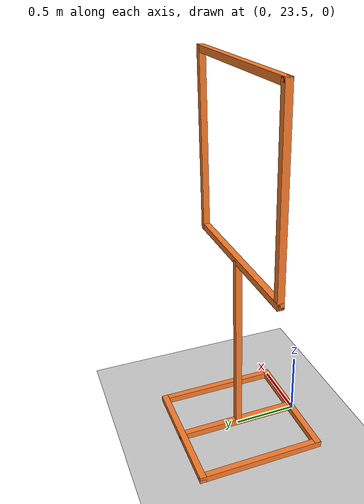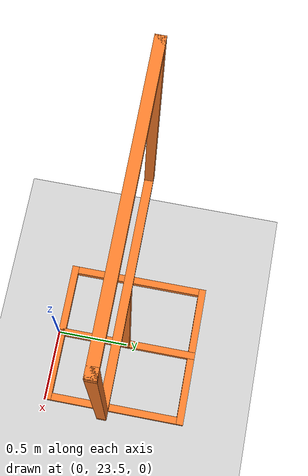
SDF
<sdf version="1.6">
 <world name="default">
  <model name="ground_plane">
   <static>1</static>
   <link name="link">
    <collision name="collision">
     <geometry><plane><normal>0 0 1</normal><size>100 100</size></plane></geometry>
     <surface><friction><ode><mu>100</mu><mu2>50</mu2></ode></friction></surface>
    </collision>
    <visual name="visual">
     <cast_shadows>0</cast_shadows>
     <geometry><plane><normal>0 0 1</normal><size>100 100</size></plane></geometry>
     <material>
      <script><uri>file://media/materials/scripts/gazebo.material</uri><name>Gazebo/Grey</name></script>
     </material>
    </visual>
    <velocity_decay><linear>0</linear><angular>0</angular></velocity_decay>
   </link>
  </model>
  <model name="adr2017_Small_Gate_4">
   <link name="link">
    <pose>0 0 0.75 0 -0 0</pose>
    <inertial>
     <mass>1</mass>
     <inertia>
      <ixx>0.166667</ixx>
      <ixy>0</ixy>
      <ixz>0</ixz>
      <iyy>0.166667</iyy>
      <iyz>0</iyz>
      <izz>0.166667</izz>
     </inertia>
    </inertial>
    <visual name="visual">
     <geometry><box><size>0.05 0.05 1.5</size></box></geometry>
     <material>
      <script><name>Gazebo/Grey</name><uri>file://media/materials/scripts/gazebo.material</uri></script>
      <shader type="vertex"><normal_map>__default__</normal_map></shader>
      <ambient>0.976 0.484 0.164 1</ambient>
      <diffuse>0.976 0.484 0.164 1</diffuse>
      <specular>0.01 0.01 0.01 1</specular>
      <emissive>0 0 0 1</emissive>
     </material>
    </visual>
    <collision name="collision">
     <geometry><box><size>0.05 0.05 1.5</size></box></geometry>
     <surface>
      <friction>
       <ode><mu>1</mu><mu2>1</mu2><fdir1>0 0 0</fdir1><slip1>0</slip1><slip2>0</slip2></ode>
       <torsional>
        <coefficient>1</coefficient>
        <patch_radius>0</patch_radius>
        <surface_radius>0</surface_radius>
        <use_patch_radius>1</use_patch_radius>
        <ode><slip>0</slip></ode>
       </torsional>
      </friction>
      <bounce><restitution_coefficient>0</restitution_coefficient><threshold>1e+06</threshold></bounce>
      <contact>
       <collide_without_contact>0</collide_without_contact>
       <collide_without_contact_bitmask>1</collide_without_contact_bitmask>
       <collide_bitmask>1</collide_bitmask>
       <ode>
        <soft_cfm>0</soft_cfm>
        <soft_erp>0.2</soft_erp>
        <kp>1e+13</kp>
        <kd>1</kd>
        <max_vel>0.01</max_vel>
        <min_depth>0</min_depth>
       </ode>
       <bullet>
        <split_impulse>1</split_impulse>
        <split_impulse_penetration_threshold>-0.01</split_impulse_penetration_threshold>
        <soft_cfm>0</soft_cfm>
        <soft_erp>0.2</soft_erp>
        <kp>1e+13</kp>
        <kd>1</kd>
       </bullet>
      </contact>
     </surface>
    </collision>
   </link>
   <link name="link_2">
    <pose>0 0 0.025 0 -0 0</pose>
    <inertial>
     <mass>1</mass>
     <inertia>
      <ixx>0.166667</ixx>
      <ixy>0</ixy>
      <ixz>0</ixz>
      <iyy>0.166667</iyy>
      <iyz>0</iyz>
      <izz>0.166667</izz>
     </inertia>
    </inertial>
    <visual name="visual">
     <geometry><box><size>0.05 1 0.05</size></box></geometry>
     <material>
      <script><name>Gazebo/Grey</name><uri>file://media/materials/scripts/gazebo.material</uri></script>
      <shader type="vertex"><normal_map>__default__</normal_map></shader>
      <ambient>0.976 0.484 0.164 1</ambient>
      <diffuse>0.976 0.484 0.164 1</diffuse>
      <specular>0.01 0.01 0.01 1</specular>
      <emissive>0 0 0 1</emissive>
     </material>
    </visual>
    <collision name="collision">
     <geometry><box><size>0.05 1 0.05</size></box></geometry>
     <surface>
      <friction>
       <ode><mu>1</mu><mu2>1</mu2><fdir1>0 0 0</fdir1><slip1>0</slip1><slip2>0</slip2></ode>
       <torsional>
        <coefficient>1</coefficient>
        <patch_radius>0</patch_radius>
        <surface_radius>0</surface_radius>
        <use_patch_radius>1</use_patch_radius>
        <ode><slip>0</slip></ode>
       </torsional>
      </friction>
      <bounce><restitution_coefficient>0</restitution_coefficient><threshold>1e+06</threshold></bounce>
      <contact>
       <collide_without_contact>0</collide_without_contact>
       <collide_without_contact_bitmask>1</collide_without_contact_bitmask>
       <collide_bitmask>1</collide_bitmask>
       <ode>
        <soft_cfm>0</soft_cfm>
        <soft_erp>0.2</soft_erp>
        <kp>1e+13</kp>
        <kd>1</kd>
        <max_vel>0.01</max_vel>
        <min_depth>0</min_depth>
       </ode>
       <bullet>
        <split_impulse>1</split_impulse>
        <split_impulse_penetration_threshold>-0.01</split_impulse_penetration_threshold>
        <soft_cfm>0</soft_cfm>
        <soft_erp>0.2</soft_erp>
        <kp>1e+13</kp>
        <kd>1</kd>
       </bullet>
      </contact>
     </surface>
    </collision>
   </link>
   <link name="link_3">
    <pose>0.475 0 0.024 0 -0 0</pose>
    <inertial>
     <mass>1</mass>
     <inertia>
      <ixx>0.166667</ixx>
      <ixy>0</ixy>
      <ixz>0</ixz>
      <iyy>0.166667</iyy>
      <iyz>0</iyz>
      <izz>0.166667</izz>
     </inertia>
    </inertial>
    <visual name="visual">
     <geometry><box><size>0.05 1 0.05</size></box></geometry>
     <material>
      <script><name>Gazebo/Grey</name><uri>file://media/materials/scripts/gazebo.material</uri></script>
      <shader type="vertex"><normal_map>__default__</normal_map></shader>
      <ambient>0.976 0.484 0.164 1</ambient>
      <diffuse>0.976 0.484 0.164 1</diffuse>
      <specular>0.01 0.01 0.01 1</specular>
      <emissive>0 0 0 1</emissive>
     </material>
    </visual>
    <collision name="collision">
     <geometry><box><size>0.05 1 0.05</size></box></geometry>
     <surface>
      <friction>
       <ode><mu>1</mu><mu2>1</mu2><fdir1>0 0 0</fdir1><slip1>0</slip1><slip2>0</slip2></ode>
       <torsional>
        <coefficient>1</coefficient>
        <patch_radius>0</patch_radius>
        <surface_radius>0</surface_radius>
        <use_patch_radius>1</use_patch_radius>
        <ode><slip>0</slip></ode>
       </torsional>
      </friction>
      <bounce><restitution_coefficient>0</restitution_coefficient><threshold>1e+06</threshold></bounce>
      <contact>
       <collide_without_contact>0</collide_without_contact>
       <collide_without_contact_bitmask>1</collide_without_contact_bitmask>
       <collide_bitmask>1</collide_bitmask>
       <ode>
        <soft_cfm>0</soft_cfm>
        <soft_erp>0.2</soft_erp>
        <kp>1e+13</kp>
        <kd>1</kd>
        <max_vel>0.01</max_vel>
        <min_depth>0</min_depth>
       </ode>
       <bullet>
        <split_impulse>1</split_impulse>
        <split_impulse_penetration_threshold>-0.01</split_impulse_penetration_threshold>
        <soft_cfm>0</soft_cfm>
        <soft_erp>0.2</soft_erp>
        <kp>1e+13</kp>
        <kd>1</kd>
       </bullet>
      </contact>
     </surface>
    </collision>
   </link>
   <link name="link_4">
    <pose>-0.475 0 0.024 0 -0 0</pose>
    <inertial>
     <mass>1</mass>
     <inertia>
      <ixx>0.166667</ixx>
      <ixy>0</ixy>
      <ixz>0</ixz>
      <iyy>0.166667</iyy>
      <iyz>0</iyz>
      <izz>0.166667</izz>
     </inertia>
    </inertial>
    <visual name="visual">
     <geometry><box><size>0.05 1 0.05</size></box></geometry>
     <material>
      <script><name>Gazebo/Grey</name><uri>file://media/materials/scripts/gazebo.material</uri></script>
      <shader type="vertex"><normal_map>__default__</normal_map></shader>
      <ambient>0.976 0.484 0.164 1</ambient>
      <diffuse>0.976 0.484 0.164 1</diffuse>
      <specular>0.01 0.01 0.01 1</specular>
      <emissive>0 0 0 1</emissive>
     </material>
    </visual>
    <collision name="collision">
     <geometry><box><size>0.05 1 0.05</size></box></geometry>
     <surface>
      <friction>
       <ode><mu>1</mu><mu2>1</mu2><fdir1>0 0 0</fdir1><slip1>0</slip1><slip2>0</slip2></ode>
       <torsional>
        <coefficient>1</coefficient>
        <patch_radius>0</patch_radius>
        <surface_radius>0</surface_radius>
        <use_patch_radius>1</use_patch_radius>
        <ode><slip>0</slip></ode>
       </torsional>
      </friction>
      <bounce><restitution_coefficient>0</restitution_coefficient><threshold>1e+06</threshold></bounce>
      <contact>
       <collide_without_contact>0</collide_without_contact>
       <collide_without_contact_bitmask>1</collide_without_contact_bitmask>
       <collide_bitmask>1</collide_bitmask>
       <ode>
        <soft_cfm>0</soft_cfm>
        <soft_erp>0.2</soft_erp>
        <kp>1e+13</kp>
        <kd>1</kd>
        <max_vel>0.01</max_vel>
        <min_depth>0</min_depth>
       </ode>
       <bullet>
        <split_impulse>1</split_impulse>
        <split_impulse_penetration_threshold>-0.01</split_impulse_penetration_threshold>
        <soft_cfm>0</soft_cfm>
        <soft_erp>0.2</soft_erp>
        <kp>1e+13</kp>
        <kd>1</kd>
       </bullet>
      </contact>
     </surface>
    </collision>
   </link>
   <link name="link_5">
    <pose>0 0.475 0.025 0 -0 0</pose>
    <inertial>
     <mass>1</mass>
     <inertia>
      <ixx>0.166667</ixx>
      <ixy>0</ixy>
      <ixz>0</ixz>
      <iyy>0.166667</iyy>
      <iyz>0</iyz>
      <izz>0.166667</izz>
     </inertia>
    </inertial>
    <visual name="visual">
     <geometry><box><size>1 0.05 0.05</size></box></geometry>
     <material>
      <script><name>Gazebo/Grey</name><uri>file://media/materials/scripts/gazebo.material</uri></script>
      <shader type="vertex"><normal_map>__default__</normal_map></shader>
      <ambient>0.976 0.484 0.164 1</ambient>
      <diffuse>0.976 0.484 0.164 1</diffuse>
      <specular>0.01 0.01 0.01 1</specular>
      <emissive>0 0 0 1</emissive>
     </material>
    </visual>
    <collision name="collision">
     <geometry><box><size>1 0.05 0.05</size></box></geometry>
     <surface>
      <friction>
       <ode><mu>1</mu><mu2>1</mu2><fdir1>0 0 0</fdir1><slip1>0</slip1><slip2>0</slip2></ode>
       <torsional>
        <coefficient>1</coefficient>
        <patch_radius>0</patch_radius>
        <surface_radius>0</surface_radius>
        <use_patch_radius>1</use_patch_radius>
        <ode><slip>0</slip></ode>
       </torsional>
      </friction>
      <bounce><restitution_coefficient>0</restitution_coefficient><threshold>1e+06</threshold></bounce>
      <contact>
       <collide_without_contact>0</collide_without_contact>
       <collide_without_contact_bitmask>1</collide_without_contact_bitmask>
       <collide_bitmask>1</collide_bitmask>
       <ode>
        <soft_cfm>0</soft_cfm>
        <soft_erp>0.2</soft_erp>
        <kp>1e+13</kp>
        <kd>1</kd>
        <max_vel>0.01</max_vel>
        <min_depth>0</min_depth>
       </ode>
       <bullet>
        <split_impulse>1</split_impulse>
        <split_impulse_penetration_threshold>-0.01</split_impulse_penetration_threshold>
        <soft_cfm>0</soft_cfm>
        <soft_erp>0.2</soft_erp>
        <kp>1e+13</kp>
        <kd>1</kd>
       </bullet>
      </contact>
     </surface>
    </collision>
   </link>
   <link name="link_6">
    <pose>0 -0.475 0.025 0 -0 0</pose>
    <inertial>
     <mass>1</mass>
     <inertia>
      <ixx>0.166667</ixx>
      <ixy>0</ixy>
      <ixz>0</ixz>
      <iyy>0.166667</iyy>
      <iyz>0</iyz>
      <izz>0.166667</izz>
     </inertia>
    </inertial>
    <visual name="visual">
     <geometry><box><size>1 0.05 0.05</size></box></geometry>
     <material>
      <script><name>Gazebo/Grey</name><uri>file://media/materials/scripts/gazebo.material</uri></script>
      <shader type="vertex"><normal_map>__default__</normal_map></shader>
      <ambient>0.976 0.484 0.164 1</ambient>
      <diffuse>0.976 0.484 0.164 1</diffuse>
      <specular>0.01 0.01 0.01 1</specular>
      <emissive>0 0 0 1</emissive>
     </material>
    </visual>
    <collision name="collision">
     <geometry><box><size>1 0.05 0.05</size></box></geometry>
     <surface>
      <friction>
       <ode><mu>1</mu><mu2>1</mu2><fdir1>0 0 0</fdir1><slip1>0</slip1><slip2>0</slip2></ode>
       <torsional>
        <coefficient>1</coefficient>
        <patch_radius>0</patch_radius>
        <surface_radius>0</surface_radius>
        <use_patch_radius>1</use_patch_radius>
        <ode><slip>0</slip></ode>
       </torsional>
      </friction>
      <bounce><restitution_coefficient>0</restitution_coefficient><threshold>1e+06</threshold></bounce>
      <contact>
       <collide_without_contact>0</collide_without_contact>
       <collide_without_contact_bitmask>1</collide_without_contact_bitmask>
       <collide_bitmask>1</collide_bitmask>
       <ode>
        <soft_cfm>0</soft_cfm>
        <soft_erp>0.2</soft_erp>
        <kp>1e+13</kp>
        <kd>1</kd>
        <max_vel>0.01</max_vel>
        <min_depth>0</min_depth>
       </ode>
       <bullet>
        <split_impulse>1</split_impulse>
        <split_impulse_penetration_threshold>-0.01</split_impulse_penetration_threshold>
        <soft_cfm>0</soft_cfm>
        <soft_erp>0.2</soft_erp>
        <kp>1e+13</kp>
        <kd>1</kd>
       </bullet>
      </contact>
     </surface>
    </collision>
   </link>
   <link name="link_7">
    <pose>0 0 2.85 0 -0 0</pose>
    <inertial>
     <mass>1</mass>
     <inertia>
      <ixx>0.166667</ixx>
      <ixy>0</ixy>
      <ixz>0</ixz>
      <iyy>0.166667</iyy>
      <iyz>0</iyz>
      <izz>0.166667</izz>
     </inertia>
    </inertial>
    <visual name="visual">
     <geometry><box><size>1.4 0.05 0.05</size></box></geometry>
     <material>
      <script><name>Gazebo/Grey</name><uri>file://media/materials/scripts/gazebo.material</uri></script>
      <shader type="vertex"><normal_map>__default__</normal_map></shader>
      <ambient>0.976 0.484 0.164 1</ambient>
      <diffuse>0.976 0.484 0.164 1</diffuse>
      <specular>0.01 0.01 0.01 1</specular>
      <emissive>0 0 0 1</emissive>
     </material>
    </visual>
    <collision name="collision">
     <geometry><box><size>1.4 0.05 0.05</size></box></geometry>
     <surface>
      <friction>
       <ode><mu>1</mu><mu2>1</mu2><fdir1>0 0 0</fdir1><slip1>0</slip1><slip2>0</slip2></ode>
       <torsional>
        <coefficient>1</coefficient>
        <patch_radius>0</patch_radius>
        <surface_radius>0</surface_radius>
        <use_patch_radius>1</use_patch_radius>
        <ode><slip>0</slip></ode>
       </torsional>
      </friction>
      <bounce><restitution_coefficient>0</restitution_coefficient><threshold>1e+06</threshold></bounce>
      <contact>
       <collide_without_contact>0</collide_without_contact>
       <collide_without_contact_bitmask>1</collide_without_contact_bitmask>
       <collide_bitmask>1</collide_bitmask>
       <ode>
        <soft_cfm>0</soft_cfm>
        <soft_erp>0.2</soft_erp>
        <kp>1e+13</kp>
        <kd>1</kd>
        <max_vel>0.01</max_vel>
        <min_depth>0</min_depth>
       </ode>
       <bullet>
        <split_impulse>1</split_impulse>
        <split_impulse_penetration_threshold>-0.01</split_impulse_penetration_threshold>
        <soft_cfm>0</soft_cfm>
        <soft_erp>0.2</soft_erp>
        <kp>1e+13</kp>
        <kd>1</kd>
       </bullet>
      </contact>
     </surface>
    </collision>
   </link>
   <link name="link_8">
    <pose>0 0 1.5 0 -0 0</pose>
    <inertial>
     <mass>1</mass>
     <inertia>
      <ixx>0.166667</ixx>
      <ixy>0</ixy>
      <ixz>0</ixz>
      <iyy>0.166667</iyy>
      <iyz>0</iyz>
      <izz>0.166667</izz>
     </inertia>
    </inertial>
    <visual name="visual">
     <geometry><box><size>1.4 0.05 0.05</size></box></geometry>
     <material>
      <script><name>Gazebo/Grey</name><uri>file://media/materials/scripts/gazebo.material</uri></script>
      <shader type="vertex"><normal_map>__default__</normal_map></shader>
      <ambient>0.976 0.484 0.164 1</ambient>
      <diffuse>0.976 0.484 0.164 1</diffuse>
      <specular>0.01 0.01 0.01 1</specular>
      <emissive>0 0 0 1</emissive>
     </material>
    </visual>
    <collision name="collision">
     <geometry><box><size>1.4 0.05 0.05</size></box></geometry>
     <surface>
      <friction>
       <ode><mu>1</mu><mu2>1</mu2><fdir1>0 0 0</fdir1><slip1>0</slip1><slip2>0</slip2></ode>
       <torsional>
        <coefficient>1</coefficient>
        <patch_radius>0</patch_radius>
        <surface_radius>0</surface_radius>
        <use_patch_radius>1</use_patch_radius>
        <ode><slip>0</slip></ode>
       </torsional>
      </friction>
      <bounce><restitution_coefficient>0</restitution_coefficient><threshold>1e+06</threshold></bounce>
      <contact>
       <collide_without_contact>0</collide_without_contact>
       <collide_without_contact_bitmask>1</collide_without_contact_bitmask>
       <collide_bitmask>1</collide_bitmask>
       <ode>
        <soft_cfm>0</soft_cfm>
        <soft_erp>0.2</soft_erp>
        <kp>1e+13</kp>
        <kd>1</kd>
        <max_vel>0.01</max_vel>
        <min_depth>0</min_depth>
       </ode>
       <bullet>
        <split_impulse>1</split_impulse>
        <split_impulse_penetration_threshold>-0.01</split_impulse_penetration_threshold>
        <soft_cfm>0</soft_cfm>
        <soft_erp>0.2</soft_erp>
        <kp>1e+13</kp>
        <kd>1</kd>
       </bullet>
      </contact>
     </surface>
    </collision>
   </link>
   <link name="link_9">
    <pose>-0.675 0 1.475 0 -0 0</pose>
    <inertial>
     <mass>1</mass>
     <inertia>
      <ixx>0.166667</ixx>
      <ixy>0</ixy>
      <ixz>0</ixz>
      <iyy>0.166667</iyy>
      <iyz>0</iyz>
      <izz>0.166667</izz>
     </inertia>
    </inertial>
    <visual name="visual">
     <geometry><box><size>0.05 0.05 1.4</size></box></geometry>
     <material>
      <script><name>Gazebo/Grey</name><uri>file://media/materials/scripts/gazebo.material</uri></script>
      <shader type="vertex"><normal_map>__default__</normal_map></shader>
      <ambient>0.976 0.484 0.164 1</ambient>
      <diffuse>0.976 0.484 0.164 1</diffuse>
      <specular>0.01 0.01 0.01 1</specular>
      <emissive>0 0 0 1</emissive>
     </material>
     <pose>0 0 0.7 0 -0 0</pose>
    </visual>
    <collision name="collision">
     <pose>0 0 0.7 0 -0 0</pose>
     <geometry><box><size>0.05 0.05 1.4</size></box></geometry>
     <surface>
      <friction>
       <ode><mu>1</mu><mu2>1</mu2><fdir1>0 0 0</fdir1><slip1>0</slip1><slip2>0</slip2></ode>
       <torsional>
        <coefficient>1</coefficient>
        <patch_radius>0</patch_radius>
        <surface_radius>0</surface_radius>
        <use_patch_radius>1</use_patch_radius>
        <ode><slip>0</slip></ode>
       </torsional>
      </friction>
      <bounce><restitution_coefficient>0</restitution_coefficient><threshold>1e+06</threshold></bounce>
      <contact>
       <collide_without_contact>0</collide_without_contact>
       <collide_without_contact_bitmask>1</collide_without_contact_bitmask>
       <collide_bitmask>1</collide_bitmask>
       <ode>
        <soft_cfm>0</soft_cfm>
        <soft_erp>0.2</soft_erp>
        <kp>1e+13</kp>
        <kd>1</kd>
        <max_vel>0.01</max_vel>
        <min_depth>0</min_depth>
       </ode>
       <bullet>
        <split_impulse>1</split_impulse>
        <split_impulse_penetration_threshold>-0.01</split_impulse_penetration_threshold>
        <soft_cfm>0</soft_cfm>
        <soft_erp>0.2</soft_erp>
        <kp>1e+13</kp>
        <kd>1</kd>
       </bullet>
      </contact>
     </surface>
    </collision>
   </link>
   <link name="link_10">
    <pose>0.675 0 1.475 0 -0 0</pose>
    <inertial>
     <mass>1</mass>
     <inertia>
      <ixx>0.166667</ixx>
      <ixy>0</ixy>
      <ixz>0</ixz>
      <iyy>0.166667</iyy>
      <iyz>0</iyz>
      <izz>0.166667</izz>
     </inertia>
    </inertial>
    <visual name="visual">
     <geometry><box><size>0.05 0.05 1.4</size></box></geometry>
     <material>
      <script><name>Gazebo/Grey</name><uri>file://media/materials/scripts/gazebo.material</uri></script>
      <shader type="vertex"><normal_map>__default__</normal_map></shader>
      <ambient>0.976 0.484 0.164 1</ambient>
      <diffuse>0.976 0.484 0.164 1</diffuse>
      <specular>0.01 0.01 0.01 1</specular>
      <emissive>0 0 0 1</emissive>
     </material>
     <pose>0 0 0.7 0 -0 0</pose>
    </visual>
    <collision name="collision">
     <pose>0 0 0.7 0 -0 0</pose>
     <geometry><box><size>0.05 0.05 1.4</size></box></geometry>
     <surface>
      <friction>
       <ode><mu>1</mu><mu2>1</mu2><fdir1>0 0 0</fdir1><slip1>0</slip1><slip2>0</slip2></ode>
       <torsional>
        <coefficient>1</coefficient>
        <patch_radius>0</patch_radius>
        <surface_radius>0</surface_radius>
        <use_patch_radius>1</use_patch_radius>
        <ode><slip>0</slip></ode>
       </torsional>
      </friction>
      <bounce><restitution_coefficient>0</restitution_coefficient><threshold>1e+06</threshold></bounce>
      <contact>
       <collide_without_contact>0</collide_without_contact>
       <collide_without_contact_bitmask>1</collide_without_contact_bitmask>
       <collide_bitmask>1</collide_bitmask>
       <ode>
        <soft_cfm>0</soft_cfm>
        <soft_erp>0.2</soft_erp>
        <kp>1e+13</kp>
        <kd>1</kd>
        <max_vel>0.01</max_vel>
        <min_depth>0</min_depth>
       </ode>
       <bullet>
        <split_impulse>1</split_impulse>
        <split_impulse_penetration_threshold>-0.01</split_impulse_penetration_threshold>
        <soft_cfm>0</soft_cfm>
        <soft_erp>0.2</soft_erp>
        <kp>1e+13</kp>
        <kd>1</kd>
       </bullet>
      </contact>
     </surface>
    </collision>
   </link>
   <static>1</static>
   <pose>0 24 0 0 -0 0</pose>
  </model>
 </world>
</sdf>
